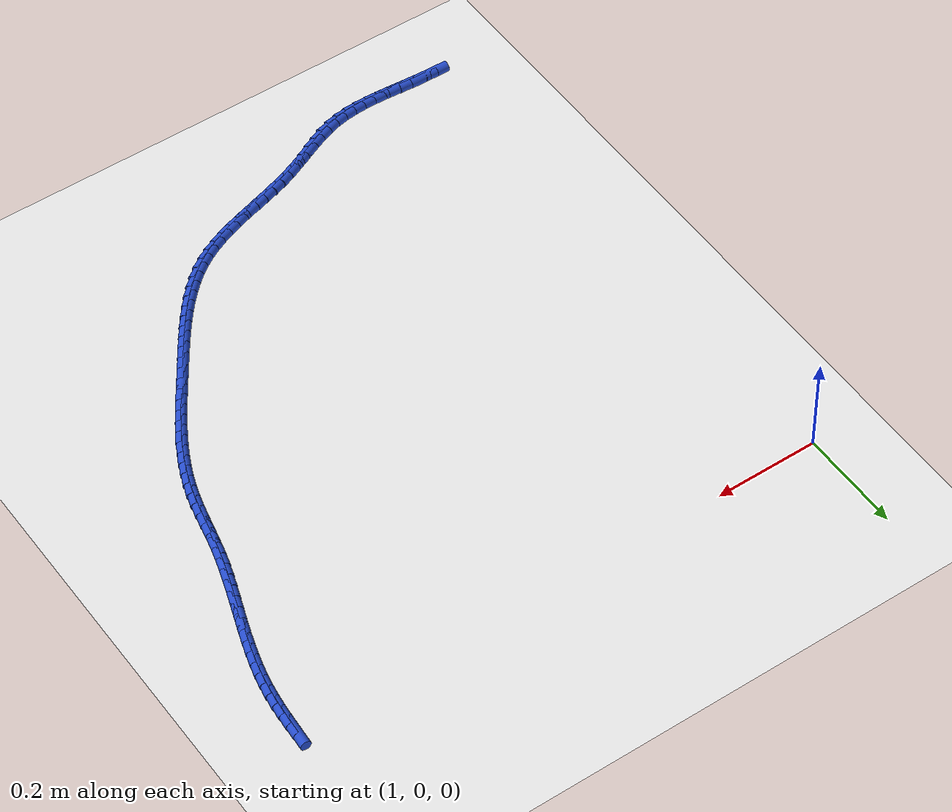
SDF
<sdf version="1.6">
 <world name="default">
  <model name="ground_plane">
   <static>1</static>
   <link name="link">
    <collision name="collision">
     <geometry><plane><normal>0 0 1</normal><size>100 100</size></plane></geometry>
     <surface><friction><ode><mu>100</mu><mu2>50</mu2></ode></friction></surface>
    </collision>
    <visual name="visual">
     <cast_shadows>0</cast_shadows>
     <geometry><plane><normal>0 0 1</normal><size>100 100</size></plane></geometry>
     <material>
      <script><uri>file://media/materials/scripts/gazebo.material</uri><name>Gazebo/WhiteGlow</name></script>
     </material>
    </visual>
   </link>
  </model>
  <model name="line">
   <link name="link_145">
    <pose>2.0434532219597745 -0.008260339889048675 0.01 0 1.57 1.5113125005749057</pose>
    <collision name="collision">
     <geometry><cylinder><radius>0.01</radius><length>0.08</length></cylinder></geometry>
    </collision>
    <visual name="visual">
     <material>
      <script><name>Gazebo/Blue</name><uri>file://media/materials/scripts/gazebo.material</uri></script>
     </material>
     <geometry><cylinder><radius>0.01</radius><length>0.08</length></cylinder></geometry>
    </visual>
   </link>
   <link name="link_146">
    <pose>2.0421132192051803 -0.030760942344672686 0.01 0 1.57 1.491099354355655</pose>
    <collision name="collision">
     <geometry><cylinder><radius>0.01</radius><length>0.08</length></cylinder></geometry>
    </collision>
    <visual name="visual">
     <material>
      <script><name>Gazebo/Blue</name><uri>file://media/materials/scripts/gazebo.material</uri></script>
     </material>
     <geometry><cylinder><radius>0.01</radius><length>0.08</length></cylinder></geometry>
    </visual>
   </link>
   <link name="link_147">
    <pose>2.0403276148792697 -0.053118406922092715 0.01 0 1.57 1.4643058368226018</pose>
    <collision name="collision">
     <geometry><cylinder><radius>0.01</radius><length>0.08</length></cylinder></geometry>
    </collision>
    <visual name="visual">
     <material>
      <script><name>Gazebo/Blue</name><uri>file://media/materials/scripts/gazebo.material</uri></script>
     </material>
     <geometry><cylinder><radius>0.01</radius><length>0.08</length></cylinder></geometry>
    </visual>
   </link>
   <link name="link_148">
    <pose>2.037951282728431 -0.07534896140374778 0.01 0 1.57 1.4310174445673238</pose>
    <collision name="collision">
     <geometry><cylinder><radius>0.01</radius><length>0.08</length></cylinder></geometry>
    </collision>
    <visual name="visual">
     <material>
      <script><name>Gazebo/Blue</name><uri>file://media/materials/scripts/gazebo.material</uri></script>
     </material>
     <geometry><cylinder><radius>0.01</radius><length>0.08</length></cylinder></geometry>
    </visual>
   </link>
   <link name="link_149">
    <pose>2.0348390964990513 -0.09746883357207695 0.01 0 1.57 1.391523568772725</pose>
    <collision name="collision">
     <geometry><cylinder><radius>0.01</radius><length>0.08</length></cylinder></geometry>
    </collision>
    <visual name="visual">
     <material>
      <script><name>Gazebo/Blue</name><uri>file://media/materials/scripts/gazebo.material</uri></script>
     </material>
     <geometry><cylinder><radius>0.01</radius><length>0.08</length></cylinder></geometry>
    </visual>
   </link>
   <link name="link_150">
    <pose>2.030847683637393 -0.11949427331029767 0.01 0 1.57 1.3507657210984458</pose>
    <collision name="collision">
     <geometry><cylinder><radius>0.01</radius><length>0.08</length></cylinder></geometry>
    </collision>
    <visual name="visual">
     <material>
      <script><name>Gazebo/Blue</name><uri>file://media/materials/scripts/gazebo.material</uri></script>
     </material>
     <geometry><cylinder><radius>0.01</radius><length>0.08</length></cylinder></geometry>
    </visual>
   </link>
   <link name="link_151">
    <pose>2.0259388489285275 -0.14144285598558842 0.01 0 1.57 1.3160132628428958</pose>
    <collision name="collision">
     <geometry><cylinder><radius>0.01</radius><length>0.08</length></cylinder></geometry>
    </collision>
    <visual name="visual">
     <material>
      <script><name>Gazebo/Blue</name><uri>file://media/materials/scripts/gazebo.material</uri></script>
     </material>
     <geometry><cylinder><radius>0.01</radius><length>0.08</length></cylinder></geometry>
    </visual>
   </link>
   <link name="link_152">
    <pose>2.020237396362057 -0.1633342111417557 0.01 0 1.57 1.28779589044158</pose>
    <collision name="collision">
     <geometry><cylinder><radius>0.01</radius><length>0.08</length></cylinder></geometry>
    </collision>
    <visual name="visual">
     <material>
      <script><name>Gazebo/Blue</name><uri>file://media/materials/scripts/gazebo.material</uri></script>
     </material>
     <geometry><cylinder><radius>0.01</radius><length>0.08</length></cylinder></geometry>
    </visual>
   </link>
   <link name="link_153">
    <pose>2.0138821483646545 -0.18518814498816863 0.01 0 1.57 1.2659779710494883</pose>
    <collision name="collision">
     <geometry><cylinder><radius>0.01</radius><length>0.08</length></cylinder></geometry>
    </collision>
    <visual name="visual">
     <material>
      <script><name>Gazebo/Blue</name><uri>file://media/materials/scripts/gazebo.material</uri></script>
     </material>
     <geometry><cylinder><radius>0.01</radius><length>0.08</length></cylinder></geometry>
    </visual>
   </link>
   <link name="link_154">
    <pose>2.007011927362994 -0.20702446373419417 0.01 0 1.57 1.2504118039873657</pose>
    <collision name="collision">
     <geometry><cylinder><radius>0.01</radius><length>0.08</length></cylinder></geometry>
    </collision>
    <visual name="visual">
     <material>
      <script><name>Gazebo/Blue</name><uri>file://media/materials/scripts/gazebo.material</uri></script>
     </material>
     <geometry><cylinder><radius>0.01</radius><length>0.08</length></cylinder></geometry>
    </visual>
   </link>
   <link name="link_155">
    <pose>1.9997655557837493 -0.2288629735891999 0.01 0 1.57 1.2409628685875829</pose>
    <collision name="collision">
     <geometry><cylinder><radius>0.01</radius><length>0.08</length></cylinder></geometry>
    </collision>
    <visual name="visual">
     <material>
      <script><name>Gazebo/Blue</name><uri>file://media/materials/scripts/gazebo.material</uri></script>
     </material>
     <geometry><cylinder><radius>0.01</radius><length>0.08</length></cylinder></geometry>
    </visual>
   </link>
   <link name="link_156">
    <pose>1.992281856053595 -0.25072348076255363 0.01 0 1.57 1.23752608008742</pose>
    <collision name="collision">
     <geometry><cylinder><radius>0.01</radius><length>0.08</length></cylinder></geometry>
    </collision>
    <visual name="visual">
     <material>
      <script><name>Gazebo/Blue</name><uri>file://media/materials/scripts/gazebo.material</uri></script>
     </material>
     <geometry><cylinder><radius>0.01</radius><length>0.08</length></cylinder></geometry>
    </visual>
   </link>
   <link name="link_157">
    <pose>1.9846996505992034 -0.27262579146362276 0.01 0 1.57 1.240034537014463</pose>
    <collision name="collision">
     <geometry><cylinder><radius>0.01</radius><length>0.08</length></cylinder></geometry>
    </collision>
    <visual name="visual">
     <material>
      <script><name>Gazebo/Blue</name><uri>file://media/materials/scripts/gazebo.material</uri></script>
     </material>
     <geometry><cylinder><radius>0.01</radius><length>0.08</length></cylinder></geometry>
    </visual>
   </link>
   <link name="link_158">
    <pose>1.977157761847249 -0.29458971190177513 0.01 0 1.57 1.2484619192860835</pose>
    <collision name="collision">
     <geometry><cylinder><radius>0.01</radius><length>0.08</length></cylinder></geometry>
    </collision>
    <visual name="visual">
     <material>
      <script><name>Gazebo/Blue</name><uri>file://media/materials/scripts/gazebo.material</uri></script>
     </material>
     <geometry><cylinder><radius>0.01</radius><length>0.08</length></cylinder></geometry>
    </visual>
   </link>
   <link name="link_159">
    <pose>1.969795012224405 -0.3166350482863783 0.01 0 1.57 1.2628191645014828</pose>
    <collision name="collision">
     <geometry><cylinder><radius>0.01</radius><length>0.08</length></cylinder></geometry>
    </collision>
    <visual name="visual">
     <material>
      <script><name>Gazebo/Blue</name><uri>file://media/materials/scripts/gazebo.material</uri></script>
     </material>
     <geometry><cylinder><radius>0.01</radius><length>0.08</length></cylinder></geometry>
    </visual>
   </link>
   <link name="link_160">
    <pose>1.9627502241573451 -0.3387816068268 0.01 0 1.57 1.28314548788229</pose>
    <collision name="collision">
     <geometry><cylinder><radius>0.01</radius><length>0.08</length></cylinder></geometry>
    </collision>
    <visual name="visual">
     <material>
      <script><name>Gazebo/Blue</name><uri>file://media/materials/scripts/gazebo.material</uri></script>
     </material>
     <geometry><cylinder><radius>0.01</radius><length>0.08</length></cylinder></geometry>
    </visual>
   </link>
   <link name="link_161">
    <pose>1.9561622200727435 -0.36104919373240774 0.01 0 1.57 1.3094593978931157</pose>
    <collision name="collision">
     <geometry><cylinder><radius>0.01</radius><length>0.08</length></cylinder></geometry>
    </collision>
    <visual name="visual">
     <material>
      <script><name>Gazebo/Blue</name><uri>file://media/materials/scripts/gazebo.material</uri></script>
     </material>
     <geometry><cylinder><radius>0.01</radius><length>0.08</length></cylinder></geometry>
    </visual>
   </link>
   <link name="link_162">
    <pose>1.9501690622723322 -0.3834574095234935 0.01 0 1.57 1.3362147402481168</pose>
    <collision name="collision">
     <geometry><cylinder><radius>0.01</radius><length>0.08</length></cylinder></geometry>
    </collision>
    <visual name="visual">
     <material>
      <script><name>Gazebo/Blue</name><uri>file://media/materials/scripts/gazebo.material</uri></script>
     </material>
     <geometry><cylinder><radius>0.01</radius><length>0.08</length></cylinder></geometry>
    </visual>
   </link>
   <link name="link_163">
    <pose>1.944783714660803 -0.40599200321479345 0.01 0 1.57 1.351663415942117</pose>
    <collision name="collision">
     <geometry><cylinder><radius>0.01</radius><length>0.08</length></cylinder></geometry>
    </collision>
    <visual name="visual">
     <material>
      <script><name>Gazebo/Blue</name><uri>file://media/materials/scripts/gazebo.material</uri></script>
     </material>
     <geometry><cylinder><radius>0.01</radius><length>0.08</length></cylinder></geometry>
    </visual>
   </link>
   <link name="link_164">
    <pose>1.9397559443063785 -0.42856750301100416 0.01 0 1.57 1.3542938488519307</pose>
    <collision name="collision">
     <geometry><cylinder><radius>0.01</radius><length>0.08</length></cylinder></geometry>
    </collision>
    <visual name="visual">
     <material>
      <script><name>Gazebo/Blue</name><uri>file://media/materials/scripts/gazebo.material</uri></script>
     </material>
     <geometry><cylinder><radius>0.01</radius><length>0.08</length></cylinder></geometry>
    </visual>
   </link>
   <link name="link_165">
    <pose>1.9348022486813086 -0.4510894343962471 0.01 0 1.57 1.344000941676989</pose>
    <collision name="collision">
     <geometry><cylinder><radius>0.01</radius><length>0.08</length></cylinder></geometry>
    </collision>
    <visual name="visual">
     <material>
      <script><name>Gazebo/Blue</name><uri>file://media/materials/scripts/gazebo.material</uri></script>
     </material>
     <geometry><cylinder><radius>0.01</radius><length>0.08</length></cylinder></geometry>
    </visual>
   </link>
   <link name="link_166">
    <pose>1.9296391252578446 -0.4734633228546443 0.01 0 1.57 1.3205847964235164</pose>
    <collision name="collision">
     <geometry><cylinder><radius>0.01</radius><length>0.08</length></cylinder></geometry>
    </collision>
    <visual name="visual">
     <material>
      <script><name>Gazebo/Blue</name><uri>file://media/materials/scripts/gazebo.material</uri></script>
     </material>
     <geometry><cylinder><radius>0.01</radius><length>0.08</length></cylinder></geometry>
    </visual>
   </link>
   <link name="link_167">
    <pose>1.9239830715082356 -0.49559469387031724 0.01 0 1.57 1.283800241048467</pose>
    <collision name="collision">
     <geometry><cylinder><radius>0.01</radius><length>0.08</length></cylinder></geometry>
    </collision>
    <visual name="visual">
     <material>
      <script><name>Gazebo/Blue</name><uri>file://media/materials/scripts/gazebo.material</uri></script>
     </material>
     <geometry><cylinder><radius>0.01</radius><length>0.08</length></cylinder></geometry>
    </visual>
   </link>
   <link name="link_168">
    <pose>1.9175505849047318 -0.5173890729273877 0.01 0 1.57 1.236031364792354</pose>
    <collision name="collision">
     <geometry><cylinder><radius>0.01</radius><length>0.08</length></cylinder></geometry>
    </collision>
    <visual name="visual">
     <material>
      <script><name>Gazebo/Blue</name><uri>file://media/materials/scripts/gazebo.material</uri></script>
     </material>
     <geometry><cylinder><radius>0.01</radius><length>0.08</length></cylinder></geometry>
    </visual>
   </link>
   <link name="link_169">
    <pose>1.9101122199653442 -0.5387724339005673 0.01 0 1.57 1.1891562553567274</pose>
    <collision name="collision">
     <geometry><cylinder><radius>0.01</radius><length>0.08</length></cylinder></geometry>
    </collision>
    <visual name="visual">
     <material>
      <script><name>Gazebo/Blue</name><uri>file://media/materials/scripts/gazebo.material</uri></script>
     </material>
     <geometry><cylinder><radius>0.01</radius><length>0.08</length></cylinder></geometry>
    </visual>
   </link>
   <link name="link_170">
    <pose>1.9016875889050793 -0.5597649627880077 0.01 0 1.57 1.1468332258591083</pose>
    <collision name="collision">
     <geometry><cylinder><radius>0.01</radius><length>0.08</length></cylinder></geometry>
    </collision>
    <visual name="visual">
     <material>
      <script><name>Gazebo/Blue</name><uri>file://media/materials/scripts/gazebo.material</uri></script>
     </material>
     <geometry><cylinder><radius>0.01</radius><length>0.08</length></cylinder></geometry>
    </visual>
   </link>
   <link name="link_171">
    <pose>1.8923679848360389 -0.5804139606282949 0.01 0 1.57 1.1092383832590045</pose>
    <collision name="collision">
     <geometry><cylinder><radius>0.01</radius><length>0.08</length></cylinder></geometry>
    </collision>
    <visual name="visual">
     <material>
      <script><name>Gazebo/Blue</name><uri>file://media/materials/scripts/gazebo.material</uri></script>
     </material>
     <geometry><cylinder><radius>0.01</radius><length>0.08</length></cylinder></geometry>
    </visual>
   </link>
   <link name="link_172">
    <pose>1.8822447073792465 -0.6007667309221733 0.01 0 1.57 1.076450028044207</pose>
    <collision name="collision">
     <geometry><cylinder><radius>0.01</radius><length>0.08</length></cylinder></geometry>
    </collision>
    <visual name="visual">
     <material>
      <script><name>Gazebo/Blue</name><uri>file://media/materials/scripts/gazebo.material</uri></script>
     </material>
     <geometry><cylinder><radius>0.01</radius><length>0.08</length></cylinder></geometry>
    </visual>
   </link>
   <link name="link_173">
    <pose>1.8714090561557264 -0.620870577170388 0.01 0 1.57 1.0484733468812648</pose>
    <collision name="collision">
     <geometry><cylinder><radius>0.01</radius><length>0.08</length></cylinder></geometry>
    </collision>
    <visual name="visual">
     <material>
      <script><name>Gazebo/Blue</name><uri>file://media/materials/scripts/gazebo.material</uri></script>
     </material>
     <geometry><cylinder><radius>0.01</radius><length>0.08</length></cylinder></geometry>
    </visual>
   </link>
   <link name="link_174">
    <pose>1.859952330786501 -0.6407728028736832 0.01 0 1.57 1.025263445806124</pose>
    <collision name="collision">
     <geometry><cylinder><radius>0.01</radius><length>0.08</length></cylinder></geometry>
    </collision>
    <visual name="visual">
     <material>
      <script><name>Gazebo/Blue</name><uri>file://media/materials/scripts/gazebo.material</uri></script>
     </material>
     <geometry><cylinder><radius>0.01</radius><length>0.08</length></cylinder></geometry>
    </visual>
   </link>
   <link name="link_175">
    <pose>1.8479658308925941 -0.6605207115328039 0.01 0 1.57 1.0067452446745606</pose>
    <collision name="collision">
     <geometry><cylinder><radius>0.01</radius><length>0.08</length></cylinder></geometry>
    </collision>
    <visual name="visual">
     <material>
      <script><name>Gazebo/Blue</name><uri>file://media/materials/scripts/gazebo.material</uri></script>
     </material>
     <geometry><cylinder><radius>0.01</radius><length>0.08</length></cylinder></geometry>
    </visual>
   </link>
   <link name="link_176">
    <pose>1.835540856095029 -0.680161606648494 0.01 0 1.57 0.9928294692292075</pose>
    <collision name="collision">
     <geometry><cylinder><radius>0.01</radius><length>0.08</length></cylinder></geometry>
    </collision>
    <visual name="visual">
     <material>
      <script><name>Gazebo/Blue</name><uri>file://media/materials/scripts/gazebo.material</uri></script>
     </material>
     <geometry><cylinder><radius>0.01</radius><length>0.08</length></cylinder></geometry>
    </visual>
   </link>
   <link name="link_177">
    <pose>1.8227687060148305 -0.699742791721499 0.01 0 1.57 0.9834246614670658</pose>
    <collision name="collision">
     <geometry><cylinder><radius>0.01</radius><length>0.08</length></cylinder></geometry>
    </collision>
    <visual name="visual">
     <material>
      <script><name>Gazebo/Blue</name><uri>file://media/materials/scripts/gazebo.material</uri></script>
     </material>
     <geometry><cylinder><radius>0.01</radius><length>0.08</length></cylinder></geometry>
    </visual>
   </link>
   <link name="link_178">
    <pose>1.809740680273021 -0.7193115702525631 0.01 0 1.57 0.9784455022923464</pose>
    <collision name="collision">
     <geometry><cylinder><radius>0.01</radius><length>0.08</length></cylinder></geometry>
    </collision>
    <visual name="visual">
     <material>
      <script><name>Gazebo/Blue</name><uri>file://media/materials/scripts/gazebo.material</uri></script>
     </material>
     <geometry><cylinder><radius>0.01</radius><length>0.08</length></cylinder></geometry>
    </visual>
   </link>
   <link name="link_179">
    <pose>1.7965480784906243 -0.7389152457424311 0.01 0 1.57 0.9775985956230551</pose>
    <collision name="collision">
     <geometry><cylinder><radius>0.01</radius><length>0.08</length></cylinder></geometry>
    </collision>
    <visual name="visual">
     <material>
      <script><name>Gazebo/Blue</name><uri>file://media/materials/scripts/gazebo.material</uri></script>
     </material>
     <geometry><cylinder><radius>0.01</radius><length>0.08</length></cylinder></geometry>
    </visual>
   </link>
   <link name="link_180">
    <pose>1.7832785876822588 -0.7585971681088051 0.01 0 1.57 0.9758108766060686</pose>
    <collision name="collision">
     <geometry><cylinder><radius>0.01</radius><length>0.08</length></cylinder></geometry>
    </collision>
    <visual name="visual">
     <material>
      <script><name>Gazebo/Blue</name><uri>file://media/materials/scripts/gazebo.material</uri></script>
     </material>
     <geometry><cylinder><radius>0.01</radius><length>0.08</length></cylinder></geometry>
    </visual>
   </link>
   <link name="link_181">
    <pose>1.7699369757403276 -0.7783099418078944 0.01 0 1.57 0.9680606638703985</pose>
    <collision name="collision">
     <geometry><cylinder><radius>0.01</radius><length>0.08</length></cylinder></geometry>
    </collision>
    <visual name="visual">
     <material>
      <script><name>Gazebo/Blue</name><uri>file://media/materials/scripts/gazebo.material</uri></script>
     </material>
     <geometry><cylinder><radius>0.01</radius><length>0.08</length></cylinder></geometry>
    </visual>
   </link>
   <link name="link_182">
    <pose>1.7564451862269759 -0.7979155295733279 0.01 0 1.57 0.954058793162218</pose>
    <collision name="collision">
     <geometry><cylinder><radius>0.01</radius><length>0.08</length></cylinder></geometry>
    </collision>
    <visual name="visual">
     <material>
      <script><name>Gazebo/Blue</name><uri>file://media/materials/scripts/gazebo.material</uri></script>
     </material>
     <geometry><cylinder><radius>0.01</radius><length>0.08</length></cylinder></geometry>
    </visual>
   </link>
   <link name="link_183">
    <pose>1.7427215690563405 -0.8172719613034832 0.01 0 1.57 0.9336316699276036</pose>
    <collision name="collision">
     <geometry><cylinder><radius>0.01</radius><length>0.08</length></cylinder></geometry>
    </collision>
    <visual name="visual">
     <material>
      <script><name>Gazebo/Blue</name><uri>file://media/materials/scripts/gazebo.material</uri></script>
     </material>
     <geometry><cylinder><radius>0.01</radius><length>0.08</length></cylinder></geometry>
    </visual>
   </link>
   <link name="link_184">
    <pose>1.728684474142559 -0.8362372668967382 0.01 0 1.57 0.906514168968196</pose>
    <collision name="collision">
     <geometry><cylinder><radius>0.01</radius><length>0.08</length></cylinder></geometry>
    </collision>
    <visual name="visual">
     <material>
      <script><name>Gazebo/Blue</name><uri>file://media/materials/scripts/gazebo.material</uri></script>
     </material>
     <geometry><cylinder><radius>0.01</radius><length>0.08</length></cylinder></geometry>
    </visual>
   </link>
   <link name="link_185">
    <pose>1.7142522513997684 -0.8546694762514712 0.01 0 1.57 0.8723676550402462</pose>
    <collision name="collision">
     <geometry><cylinder><radius>0.01</radius><length>0.08</length></cylinder></geometry>
    </collision>
    <visual name="visual">
     <material>
      <script><name>Gazebo/Blue</name><uri>file://media/materials/scripts/gazebo.material</uri></script>
     </material>
     <geometry><cylinder><radius>0.01</radius><length>0.08</length></cylinder></geometry>
    </visual>
   </link>
   <link name="link_186">
    <pose>1.6993432507421053 -0.8724266192660598 0.01 0 1.57 0.8308093758399472</pose>
    <collision name="collision">
     <geometry><cylinder><radius>0.01</radius><length>0.08</length></cylinder></geometry>
    </collision>
    <visual name="visual">
     <material>
      <script><name>Gazebo/Blue</name><uri>file://media/materials/scripts/gazebo.material</uri></script>
     </material>
     <geometry><cylinder><radius>0.01</radius><length>0.08</length></cylinder></geometry>
    </visual>
   </link>
   <link name="link_187">
    <pose>1.6838758220837082 -0.8893667258388821 0.01 0 1.57 0.7814588816893908</pose>
    <collision name="collision">
     <geometry><cylinder><radius>0.01</radius><length>0.08</length></cylinder></geometry>
    </collision>
    <visual name="visual">
     <material>
      <script><name>Gazebo/Blue</name><uri>file://media/materials/scripts/gazebo.material</uri></script>
     </material>
     <geometry><cylinder><radius>0.01</radius><length>0.08</length></cylinder></geometry>
    </visual>
   </link>
   <link name="link_188">
    <pose>1.6677683153387133 -0.9053478258683155 0.01 0 1.57 0.7240073816303368</pose>
    <collision name="collision">
     <geometry><cylinder><radius>0.01</radius><length>0.08</length></cylinder></geometry>
    </collision>
    <visual name="visual">
     <material>
      <script><name>Gazebo/Blue</name><uri>file://media/materials/scripts/gazebo.material</uri></script>
     </material>
     <geometry><cylinder><radius>0.01</radius><length>0.08</length></cylinder></geometry>
    </visual>
   </link>
   <link name="link_189">
    <pose>1.6509390804212587 -0.9202279492527383 0.01 0 1.57 0.6583137156992597</pose>
    <collision name="collision">
     <geometry><cylinder><radius>0.01</radius><length>0.08</length></cylinder></geometry>
    </collision>
    <visual name="visual">
     <material>
      <script><name>Gazebo/Blue</name><uri>file://media/materials/scripts/gazebo.material</uri></script>
     </material>
     <geometry><cylinder><radius>0.01</radius><length>0.08</length></cylinder></geometry>
    </visual>
   </link>
   <link name="link_190">
    <pose>1.6333064672454811 -0.9338651258905282 0.01 0 1.57 0.5845606886503654</pose>
    <collision name="collision">
     <geometry><cylinder><radius>0.01</radius><length>0.08</length></cylinder></geometry>
    </collision>
    <visual name="visual">
     <material>
      <script><name>Gazebo/Blue</name><uri>file://media/materials/scripts/gazebo.material</uri></script>
     </material>
     <geometry><cylinder><radius>0.01</radius><length>0.08</length></cylinder></geometry>
    </visual>
   </link>
   <link name="link_191">
    <pose>1.614789227433561 -0.9461181015059945 0.01 0 1.57 0.5089940733733631</pose>
    <collision name="collision">
     <geometry><cylinder><radius>0.01</radius><length>0.08</length></cylinder></geometry>
    </collision>
    <visual name="visual">
     <material>
      <script><name>Gazebo/Blue</name><uri>file://media/materials/scripts/gazebo.material</uri></script>
     </material>
     <geometry><cylinder><radius>0.01</radius><length>0.08</length></cylinder></geometry>
    </visual>
   </link>
   <link name="link_192">
    <pose>1.5953679989065919 -0.9569559004657381 0.01 0 1.57 0.44413717952227594</pose>
    <collision name="collision">
     <geometry><cylinder><radius>0.01</radius><length>0.08</length></cylinder></geometry>
    </collision>
    <visual name="visual">
     <material>
      <script><name>Gazebo/Blue</name><uri>file://media/materials/scripts/gazebo.material</uri></script>
     </material>
     <geometry><cylinder><radius>0.01</radius><length>0.08</length></cylinder></geometry>
    </visual>
   </link>
   <link name="link_193">
    <pose>1.575151513431281 -0.9665758046930086 0.01 0 1.57 0.3917123399355881</pose>
    <collision name="collision">
     <geometry><cylinder><radius>0.01</radius><length>0.08</length></cylinder></geometry>
    </collision>
    <visual name="visual">
     <material>
      <script><name>Gazebo/Blue</name><uri>file://media/materials/scripts/gazebo.material</uri></script>
     </material>
     <geometry><cylinder><radius>0.01</radius><length>0.08</length></cylinder></geometry>
    </visual>
   </link>
   <link name="link_194">
    <pose>1.5542643861565348 -0.9752033995942964 0.01 0 1.57 0.3515290151015045</pose>
    <collision name="collision">
     <geometry><cylinder><radius>0.01</radius><length>0.08</length></cylinder></geometry>
    </collision>
    <visual name="visual">
     <material>
      <script><name>Gazebo/Blue</name><uri>file://media/materials/scripts/gazebo.material</uri></script>
     </material>
     <geometry><cylinder><radius>0.01</radius><length>0.08</length></cylinder></geometry>
    </visual>
   </link>
   <link name="link_195">
    <pose>1.5328312322312623 -0.9830642705760918 0.01 0 1.57 0.3231861606709738</pose>
    <collision name="collision">
     <geometry><cylinder><radius>0.01</radius><length>0.08</length></cylinder></geometry>
    </collision>
    <visual name="visual">
     <material>
      <script><name>Gazebo/Blue</name><uri>file://media/materials/scripts/gazebo.material</uri></script>
     </material>
     <geometry><cylinder><radius>0.01</radius><length>0.08</length></cylinder></geometry>
    </visual>
   </link>
   <link name="link_196">
    <pose>1.51097666680437 -0.9903840030448854 0.01 0 1.57 0.30624879330268806</pose>
    <collision name="collision">
     <geometry><cylinder><radius>0.01</radius><length>0.08</length></cylinder></geometry>
    </collision>
    <visual name="visual">
     <material>
      <script><name>Gazebo/Blue</name><uri>file://media/materials/scripts/gazebo.material</uri></script>
     </material>
     <geometry><cylinder><radius>0.01</radius><length>0.08</length></cylinder></geometry>
    </visual>
   </link>
   <link name="link_197">
    <pose>1.4888253050247662 -0.9973881824071676 0.01 0 1.57 0.30035689923859005</pose>
    <collision name="collision">
     <geometry><cylinder><radius>0.01</radius><length>0.08</length></cylinder></geometry>
    </collision>
    <visual name="visual">
     <material>
      <script><name>Gazebo/Blue</name><uri>file://media/materials/scripts/gazebo.material</uri></script>
     </material>
     <geometry><cylinder><radius>0.01</radius><length>0.08</length></cylinder></geometry>
    </visual>
   </link>
   <link name="link_198">
    <pose>1.4665017620413585 -1.004302394069429 0.01 0 1.57 0.30527997087684405</pose>
    <collision name="collision">
     <geometry><cylinder><radius>0.01</radius><length>0.08</length></cylinder></geometry>
    </collision>
    <visual name="visual">
     <material>
      <script><name>Gazebo/Blue</name><uri>file://media/materials/scripts/gazebo.material</uri></script>
     </material>
     <geometry><cylinder><radius>0.01</radius><length>0.08</length></cylinder></geometry>
    </visual>
   </link>
   <link name="link_199">
    <pose>1.4441306530030547 -1.0113522234381596 0.01 0 1.57 0.32092998837670017</pose>
    <collision name="collision">
     <geometry><cylinder><radius>0.01</radius><length>0.08</length></cylinder></geometry>
    </collision>
    <visual name="visual">
     <material>
      <script><name>Gazebo/Blue</name><uri>file://media/materials/scripts/gazebo.material</uri></script>
     </material>
     <geometry><cylinder><radius>0.01</radius><length>0.08</length></cylinder></geometry>
    </visual>
   </link>
   <link name="link_200">
    <pose>1.4218365930587622 -1.0187632559198503 0.01 0 1.57 0.347339946872218</pose>
    <collision name="collision">
     <geometry><cylinder><radius>0.01</radius><length>0.08</length></cylinder></geometry>
    </collision>
    <visual name="visual">
     <material>
      <script><name>Gazebo/Blue</name><uri>file://media/materials/scripts/gazebo.material</uri></script>
     </material>
     <geometry><cylinder><radius>0.01</radius><length>0.08</length></cylinder></geometry>
    </visual>
   </link>
   <link name="link_201">
    <pose>1.399744197357389 -1.0267610769209907 0.01 0 1.57 0.3845549742243275</pose>
    <collision name="collision">
     <geometry><cylinder><radius>0.01</radius><length>0.08</length></cylinder></geometry>
    </collision>
    <visual name="visual">
     <material>
      <script><name>Gazebo/Blue</name><uri>file://media/materials/scripts/gazebo.material</uri></script>
     </material>
     <geometry><cylinder><radius>0.01</radius><length>0.08</length></cylinder></geometry>
    </visual>
   </link>
   <link name="link_202">
    <pose>1.3779776589221433 -1.0355700824448957 0.01 0 1.57 0.4232371888707781</pose>
    <collision name="collision">
     <geometry><cylinder><radius>0.01</radius><length>0.08</length></cylinder></geometry>
    </collision>
    <visual name="visual">
     <material>
      <script><name>Gazebo/Blue</name><uri>file://media/materials/scripts/gazebo.material</uri></script>
     </material>
     <geometry><cylinder><radius>0.01</radius><length>0.08</length></cylinder></geometry>
    </visual>
   </link>
   <link name="link_203">
    <pose>1.3565870177360728 -1.045205731058096 0.01 0 1.57 0.4433592021686533</pose>
    <collision name="collision">
     <geometry><cylinder><radius>0.01</radius><length>0.08</length></cylinder></geometry>
    </collision>
    <visual name="visual">
     <material>
      <script><name>Gazebo/Blue</name><uri>file://media/materials/scripts/gazebo.material</uri></script>
     </material>
     <geometry><cylinder><radius>0.01</radius><length>0.08</length></cylinder></geometry>
    </visual>
   </link>
   <link name="link_204">
    <pose>1.3354638325783637 -1.0552369364998195 0.01 0 1.57 0.44230114799799625</pose>
    <collision name="collision">
     <geometry><cylinder><radius>0.01</radius><length>0.08</length></cylinder></geometry>
    </collision>
    <visual name="visual">
     <material>
      <script><name>Gazebo/Blue</name><uri>file://media/materials/scripts/gazebo.material</uri></script>
     </material>
     <geometry><cylinder><radius>0.01</radius><length>0.08</length></cylinder></geometry>
    </visual>
   </link>
   <link name="link_205">
    <pose>1.3144792580571623 -1.0651751206628708 0.01 0 1.57 0.4195949140690591</pose>
    <collision name="collision">
     <geometry><cylinder><radius>0.01</radius><length>0.08</length></cylinder></geometry>
    </collision>
    <visual name="visual">
     <material>
      <script><name>Gazebo/Blue</name><uri>file://media/materials/scripts/gazebo.material</uri></script>
     </material>
     <geometry><cylinder><radius>0.01</radius><length>0.08</length></cylinder></geometry>
    </visual>
   </link>
   <link name="link_206">
    <pose>1.2935044487806149 -1.0745317054400547 0.01 0 1.57 0.37431399132233956</pose>
    <collision name="collision">
     <geometry><cylinder><radius>0.01</radius><length>0.08</length></cylinder></geometry>
    </collision>
    <visual name="visual">
     <material>
      <script><name>Gazebo/Blue</name><uri>file://media/materials/scripts/gazebo.material</uri></script>
     </material>
     <geometry><cylinder><radius>0.01</radius><length>0.08</length></cylinder></geometry>
    </visual>
   </link>
   <link name="link_207">
    <pose>1.272410559356868 -1.082818112724176 0.01 0 1.57 0.3053730902971206</pose>
    <collision name="collision">
     <geometry><cylinder><radius>0.01</radius><length>0.08</length></cylinder></geometry>
    </collision>
    <visual name="visual">
     <material>
      <script><name>Gazebo/Blue</name><uri>file://media/materials/scripts/gazebo.material</uri></script>
     </material>
     <geometry><cylinder><radius>0.01</radius><length>0.08</length></cylinder></geometry>
    </visual>
   </link>
   <link name="link_208">
    <pose>1.2510687443940676 -1.0895457644080393 0.01 0 1.57 0.21605461632206796</pose>
    <collision name="collision">
     <geometry><cylinder><radius>0.01</radius><length>0.08</length></cylinder></geometry>
    </collision>
    <visual name="visual">
     <material>
      <script><name>Gazebo/Blue</name><uri>file://media/materials/scripts/gazebo.material</uri></script>
     </material>
     <geometry><cylinder><radius>0.01</radius><length>0.08</length></cylinder></geometry>
    </visual>
   </link>
   <link name="link_209">
    <pose>1.2293660348478732 -1.0943090832733091 0.01 0 1.57 0.1314011789806943</pose>
    <collision name="collision">
     <geometry><cylinder><radius>0.01</radius><length>0.08</length></cylinder></geometry>
    </collision>
    <visual name="visual">
     <material>
      <script><name>Gazebo/Blue</name><uri>file://media/materials/scripts/gazebo.material</uri></script>
     </material>
     <geometry><cylinder><radius>0.01</radius><length>0.08</length></cylinder></geometry>
    </visual>
   </link>
   <link name="link_210">
    <pose>1.2072897405863638 -1.0972267461127196 0.01 0 1.57 0.06212237863025274</pose>
    <collision name="collision">
     <geometry><cylinder><radius>0.01</radius><length>0.08</length></cylinder></geometry>
    </collision>
    <visual name="visual">
     <material>
      <script><name>Gazebo/Blue</name><uri>file://media/materials/scripts/gazebo.material</uri></script>
     </material>
     <geometry><cylinder><radius>0.01</radius><length>0.08</length></cylinder></geometry>
    </visual>
   </link>
   <link name="link_211">
    <pose>1.1848662142331228 -1.0986215436317026 0.01 0 1.57 0.00858138170836733</pose>
    <collision name="collision">
     <geometry><cylinder><radius>0.01</radius><length>0.08</length></cylinder></geometry>
    </collision>
    <visual name="visual">
     <material>
      <script><name>Gazebo/Blue</name><uri>file://media/materials/scripts/gazebo.material</uri></script>
     </material>
     <geometry><cylinder><radius>0.01</radius><length>0.08</length></cylinder></geometry>
    </visual>
   </link>
   <link name="link_212">
    <pose>1.1621218963161872 -1.098816726096554 0.01 0 1.57 -0.029558301799981538</pose>
    <collision name="collision">
     <geometry><cylinder><radius>0.01</radius><length>0.08</length></cylinder></geometry>
    </collision>
    <visual name="visual">
     <material>
      <script><name>Gazebo/Blue</name><uri>file://media/materials/scripts/gazebo.material</uri></script>
     </material>
     <geometry><cylinder><radius>0.01</radius><length>0.08</length></cylinder></geometry>
    </visual>
   </link>
   <link name="link_213">
    <pose>1.1390832273635962 -1.0981355437735718 0.01 0 1.57 -0.05290973099574414</pose>
    <collision name="collision">
     <geometry><cylinder><radius>0.01</radius><length>0.08</length></cylinder></geometry>
    </collision>
    <visual name="visual">
     <material>
      <script><name>Gazebo/Blue</name><uri>file://media/materials/scripts/gazebo.material</uri></script>
     </material>
     <geometry><cylinder><radius>0.01</radius><length>0.08</length></cylinder></geometry>
    </visual>
   </link>
   <link name="link_214">
    <pose>1.1157766479033873 -1.0969012469290524 0.01 0 1.57 -0.06209765384398493</pose>
    <collision name="collision">
     <geometry><cylinder><radius>0.01</radius><length>0.08</length></cylinder></geometry>
    </collision>
    <visual name="visual">
     <material>
      <script><name>Gazebo/Blue</name><uri>file://media/materials/scripts/gazebo.material</uri></script>
     </material>
     <geometry><cylinder><radius>0.01</radius><length>0.08</length></cylinder></geometry>
    </visual>
   </link>
   <link name="link_215">
    <pose>1.092228598463599 -1.0954370858292928 0.01 0 1.57 -0.05762122299613046</pose>
    <collision name="collision">
     <geometry><cylinder><radius>0.01</radius><length>0.08</length></cylinder></geometry>
    </collision>
    <visual name="visual">
     <material>
      <script><name>Gazebo/Blue</name><uri>file://media/materials/scripts/gazebo.material</uri></script>
     </material>
     <geometry><cylinder><radius>0.01</radius><length>0.08</length></cylinder></geometry>
    </visual>
   </link>
   <link name="link_216">
    <pose>1.06846551957227 -1.0940663107405895 0.01 0 1.57 -0.03981495521448305</pose>
    <collision name="collision">
     <geometry><cylinder><radius>0.01</radius><length>0.08</length></cylinder></geometry>
    </collision>
    <visual name="visual">
     <material>
      <script><name>Gazebo/Blue</name><uri>file://media/materials/scripts/gazebo.material</uri></script>
     </material>
     <geometry><cylinder><radius>0.01</radius><length>0.08</length></cylinder></geometry>
    </visual>
   </link>
   <link name="link_217">
    <pose>1.0445138517574384 -1.0931121719292405 0.01 0 1.57 -0.012586098376303869</pose>
    <collision name="collision">
     <geometry><cylinder><radius>0.01</radius><length>0.08</length></cylinder></geometry>
    </collision>
    <visual name="visual">
     <material>
      <script><name>Gazebo/Blue</name><uri>file://media/materials/scripts/gazebo.material</uri></script>
     </material>
     <geometry><cylinder><radius>0.01</radius><length>0.08</length></cylinder></geometry>
    </visual>
   </link>
  </model>
 </world>
</sdf>
